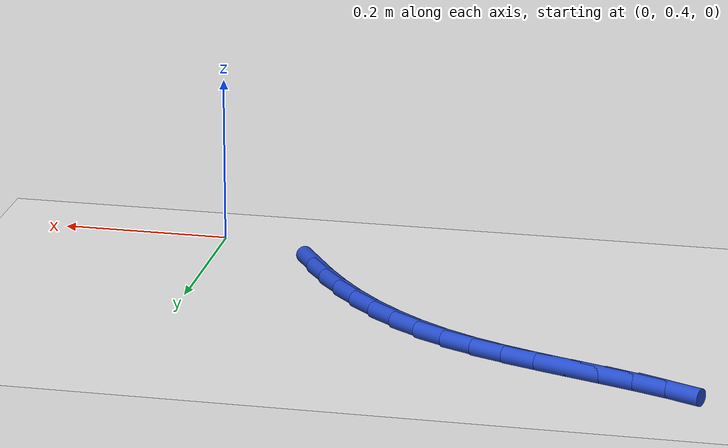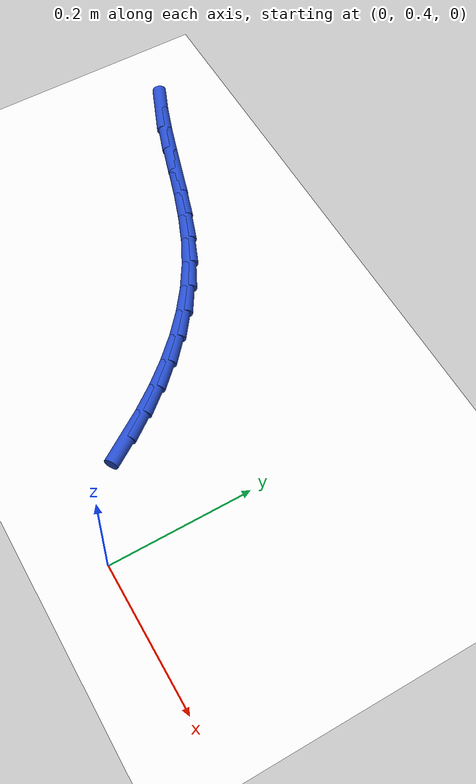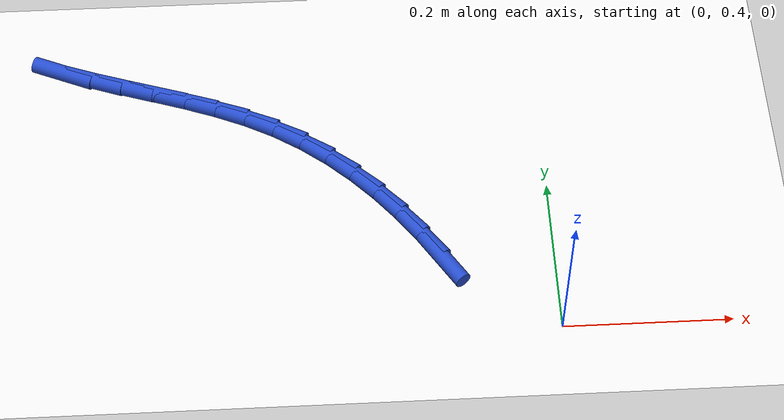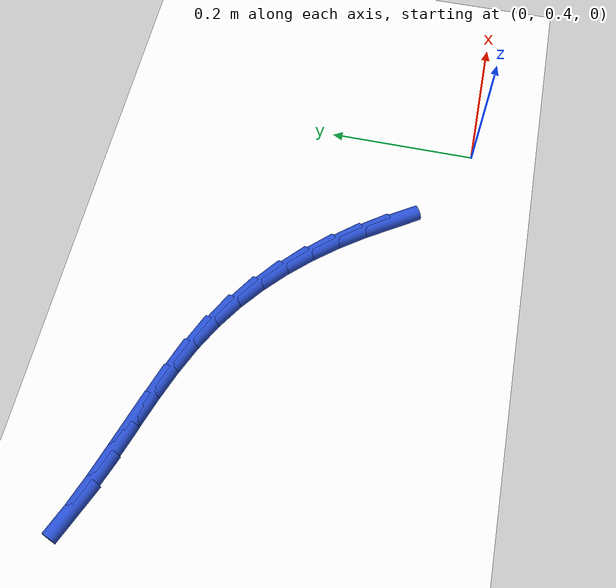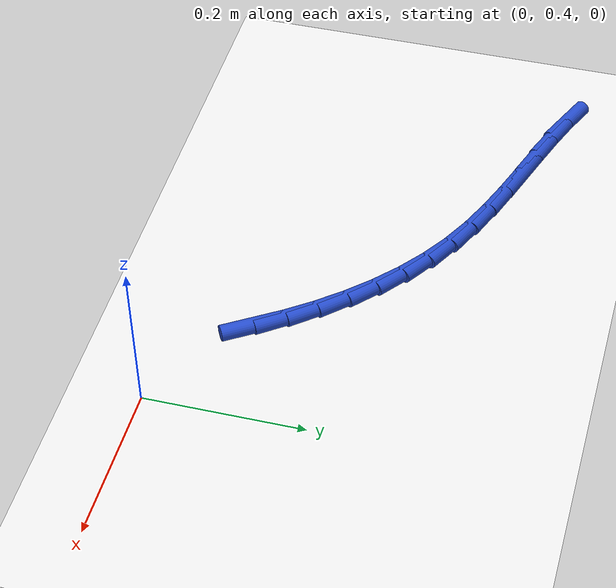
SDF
<sdf version="1.6">
 <world name="default">
  <model name="ground_plane">
   <static>1</static>
   <link name="link">
    <collision name="collision">
     <geometry><plane><normal>0 0 1</normal><size>100 100</size></plane></geometry>
     <surface><friction><ode><mu>100</mu><mu2>50</mu2></ode></friction></surface>
    </collision>
    <visual name="visual">
     <cast_shadows>0</cast_shadows>
     <geometry><plane><normal>0 0 1</normal><size>100 100</size></plane></geometry>
     <material>
      <script><uri>file://media/materials/scripts/gazebo.material</uri><name>Gazebo/WhiteGlow</name></script>
     </material>
    </visual>
   </link>
  </model>
  <model name="line">
   <link name="link_13">
    <pose>-0.1332579502406276 0.49585364921051145 0.01 0 1.57 -0.998490868550117</pose>
    <collision name="collision">
     <geometry><cylinder><radius>0.01</radius><length>0.08</length></cylinder></geometry>
    </collision>
    <visual name="visual">
     <material>
      <script><name>Gazebo/Blue</name><uri>file://media/materials/scripts/gazebo.material</uri></script>
     </material>
     <geometry><cylinder><radius>0.01</radius><length>0.08</length></cylinder></geometry>
    </visual>
   </link>
   <link name="link_14">
    <pose>-0.15524235242666343 0.5299789437530096 0.01 0 1.57 -0.9403918382312176</pose>
    <collision name="collision">
     <geometry><cylinder><radius>0.01</radius><length>0.08</length></cylinder></geometry>
    </collision>
    <visual name="visual">
     <material>
      <script><name>Gazebo/Blue</name><uri>file://media/materials/scripts/gazebo.material</uri></script>
     </material>
     <geometry><cylinder><radius>0.01</radius><length>0.08</length></cylinder></geometry>
    </visual>
   </link>
   <link name="link_15">
    <pose>-0.17906422020339802 0.5626235152505611 0.01 0 1.57 -0.8775031374997446</pose>
    <collision name="collision">
     <geometry><cylinder><radius>0.01</radius><length>0.08</length></cylinder></geometry>
    </collision>
    <visual name="visual">
     <material>
      <script><name>Gazebo/Blue</name><uri>file://media/materials/scripts/gazebo.material</uri></script>
     </material>
     <geometry><cylinder><radius>0.01</radius><length>0.08</length></cylinder></geometry>
    </visual>
   </link>
   <link name="link_16">
    <pose>-0.20475712119948097 0.5935457473588276 0.01 0 1.57 -0.8094542735155562</pose>
    <collision name="collision">
     <geometry><cylinder><radius>0.01</radius><length>0.08</length></cylinder></geometry>
    </collision>
    <visual name="visual">
     <material>
      <script><name>Gazebo/Blue</name><uri>file://media/materials/scripts/gazebo.material</uri></script>
     </material>
     <geometry><cylinder><radius>0.01</radius><length>0.08</length></cylinder></geometry>
    </visual>
   </link>
   <link name="link_17">
    <pose>-0.23235462304356186 0.6225040237334702 0.01 0 1.57 -0.7359971677160898</pose>
    <collision name="collision">
     <geometry><cylinder><radius>0.01</radius><length>0.08</length></cylinder></geometry>
    </collision>
    <visual name="visual">
     <material>
      <script><name>Gazebo/Blue</name><uri>file://media/materials/scripts/gazebo.material</uri></script>
     </material>
     <geometry><cylinder><radius>0.01</radius><length>0.08</length></cylinder></geometry>
    </visual>
   </link>
   <link name="link_18">
    <pose>-0.2618902933642904 0.6492567280301507 0.01 0 1.57 -0.6570710028706424</pose>
    <collision name="collision">
     <geometry><cylinder><radius>0.01</radius><length>0.08</length></cylinder></geometry>
    </collision>
    <visual name="visual">
     <material>
      <script><name>Gazebo/Blue</name><uri>file://media/materials/scripts/gazebo.material</uri></script>
     </material>
     <geometry><cylinder><radius>0.01</radius><length>0.08</length></cylinder></geometry>
    </visual>
   </link>
   <link name="link_19">
    <pose>-0.29339769979031627 0.6735622439045305 0.01 0 1.57 -0.5728735951414075</pose>
    <collision name="collision">
     <geometry><cylinder><radius>0.01</radius><length>0.08</length></cylinder></geometry>
    </collision>
    <visual name="visual">
     <material>
      <script><name>Gazebo/Blue</name><uri>file://media/materials/scripts/gazebo.material</uri></script>
     </material>
     <geometry><cylinder><radius>0.01</radius><length>0.08</length></cylinder></geometry>
    </visual>
   </link>
   <link name="link_20">
    <pose>-0.3269104099502889 0.695178955012271 0.01 0 1.57 -0.48507084203879447</pose>
    <collision name="collision">
     <geometry><cylinder><radius>0.01</radius><length>0.08</length></cylinder></geometry>
    </collision>
    <visual name="visual">
     <material>
      <script><name>Gazebo/Blue</name><uri>file://media/materials/scripts/gazebo.material</uri></script>
     </material>
     <geometry><cylinder><radius>0.01</radius><length>0.08</length></cylinder></geometry>
    </visual>
   </link>
   <link name="link_21">
    <pose>-0.3624384793365288 0.7139048475493727 0.01 0 1.57 -0.4094496652397565</pose>
    <collision name="collision">
     <geometry><cylinder><radius>0.01</radius><length>0.08</length></cylinder></geometry>
    </collision>
    <visual name="visual">
     <material>
      <script><name>Gazebo/Blue</name><uri>file://media/materials/scripts/gazebo.material</uri></script>
     </material>
     <geometry><cylinder><radius>0.01</radius><length>0.08</length></cylinder></geometry>
    </visual>
   </link>
   <link name="link_22">
    <pose>-0.3996783705255612 0.7300661062525278 0.01 0 1.57 -0.3562463981521785</pose>
    <collision name="collision">
     <geometry><cylinder><radius>0.01</radius><length>0.08</length></cylinder></geometry>
    </collision>
    <visual name="visual">
     <material>
      <script><name>Gazebo/Blue</name><uri>file://media/materials/scripts/gazebo.material</uri></script>
     </material>
     <geometry><cylinder><radius>0.01</radius><length>0.08</length></cylinder></geometry>
    </visual>
   </link>
   <link name="link_23">
    <pose>-0.43810330725202734 0.744364927000805 0.01 0 1.57 -0.3245230998444246</pose>
    <collision name="collision">
     <geometry><cylinder><radius>0.01</radius><length>0.08</length></cylinder></geometry>
    </collision>
    <visual name="visual">
     <material>
      <script><name>Gazebo/Blue</name><uri>file://media/materials/scripts/gazebo.material</uri></script>
     </material>
     <geometry><cylinder><radius>0.01</radius><length>0.08</length></cylinder></geometry>
    </visual>
   </link>
   <link name="link_24">
    <pose>-0.477181728764517 0.7575115643966147 0.01 0 1.57 -0.3134148171744887</pose>
    <collision name="collision">
     <geometry><cylinder><radius>0.01</radius><length>0.08</length></cylinder></geometry>
    </collision>
    <visual name="visual">
     <material>
      <script><name>Gazebo/Blue</name><uri>file://media/materials/scripts/gazebo.material</uri></script>
     </material>
     <geometry><cylinder><radius>0.01</radius><length>0.08</length></cylinder></geometry>
    </visual>
   </link>
   <link name="link_25">
    <pose>-0.51638207431162 0.7702162730423666 0.01 0 1.57 -0.322743205539177</pose>
    <collision name="collision">
     <geometry><cylinder><radius>0.01</radius><length>0.08</length></cylinder></geometry>
    </collision>
    <visual name="visual">
     <material>
      <script><name>Gazebo/Blue</name><uri>file://media/materials/scripts/gazebo.material</uri></script>
     </material>
     <geometry><cylinder><radius>0.01</radius><length>0.08</length></cylinder></geometry>
    </visual>
   </link>
   <link name="link_26">
    <pose>-0.5551727831419265 0.7831893075404717 0.01 0 1.57 -0.3531545702912088</pose>
    <collision name="collision">
     <geometry><cylinder><radius>0.01</radius><length>0.08</length></cylinder></geometry>
    </collision>
    <visual name="visual">
     <material>
      <script><name>Gazebo/Blue</name><uri>file://media/materials/scripts/gazebo.material</uri></script>
     </material>
     <geometry><cylinder><radius>0.01</radius><length>0.08</length></cylinder></geometry>
    </visual>
   </link>
   <link name="link_27">
    <pose>-0.5930222945040258 0.7971409224933389 0.01 0 1.57 -0.40606200811253595</pose>
    <collision name="collision">
     <geometry><cylinder><radius>0.01</radius><length>0.08</length></cylinder></geometry>
    </collision>
    <visual name="visual">
     <material>
      <script><name>Gazebo/Blue</name><uri>file://media/materials/scripts/gazebo.material</uri></script>
     </material>
     <geometry><cylinder><radius>0.01</radius><length>0.08</length></cylinder></geometry>
    </visual>
   </link>
  </model>
 </world>
</sdf>
